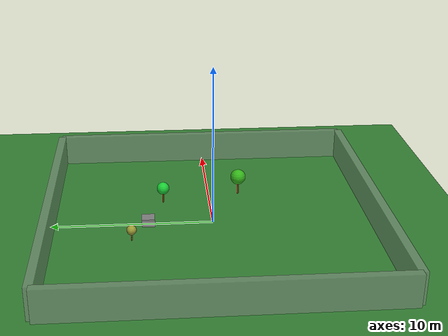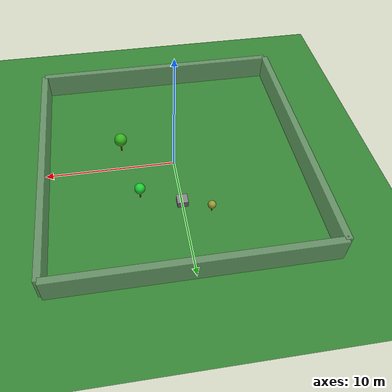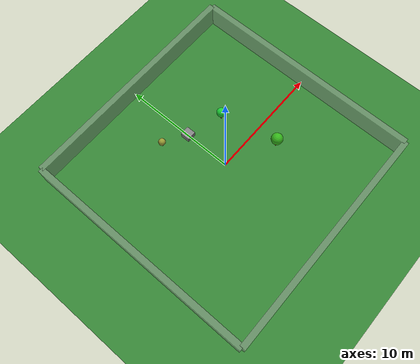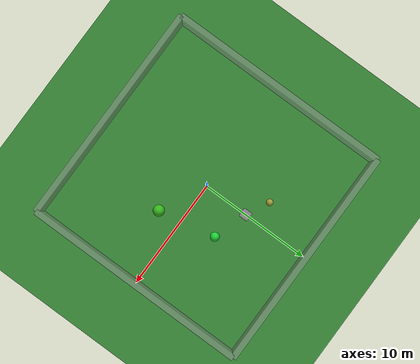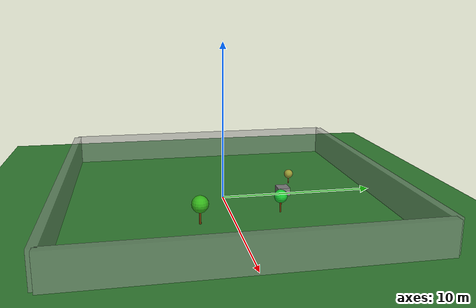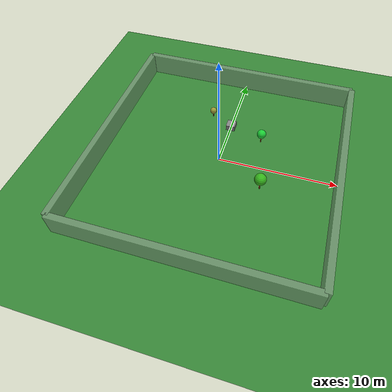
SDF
<?xml version="1.0" ?>
<sdf version="1.6">
  <world name="farm">

    <!-- Gunes -->
    <include>
      <uri>model://sun</uri>
    </include>

    <!-- Zemin (Çim Dokusu) -->
    <model name="ground_plane">
      <static>true</static>
      <link name="link">
        <collision name="collision">
          <geometry>
            <plane>
              <normal>0 0 1</normal>
              <size>100 100</size>
            </plane>
          </geometry>
          <surface>
            <friction>
              <ode>
                <mu>100</mu>
                <mu2>50</mu2>
              </ode>
            </friction>
          </surface>
        </collision>
        <visual name="visual">
          <cast_shadows>false</cast_shadows>
          <geometry>
            <plane>
              <normal>0 0 1</normal>
              <size>100 100</size>
            </plane>
          </geometry>
          <material>
            <ambient>0.2 0.5 0.2 1</ambient>
            <diffuse>0.2 0.5 0.2 1</diffuse>
            <specular>0.1 0.1 0.1 1</specular>
          </material>
        </visual>
      </link>
    </model>

    <!-- Sınır Duvarları (Sera Hissi) -->
    <!-- Kuzey Duvarı -->
    <model name="wall_north">
      <pose>0 10 1 0 0 0</pose>
      <static>true</static>
      <link name="link">
        <collision name="collision">
          <geometry><box><size>20 0.5 2</size></box></geometry>
        </collision>
        <visual name="visual">
          <geometry><box><size>20 0.5 2</size></box></geometry>
          <material><ambient>0.6 0.6 0.6 0.5</ambient></material> <!-- Yarı şeffaf cam gibi -->
        </visual>
      </link>
    </model>

    <!-- Güney Duvarı -->
    <model name="wall_south">
      <pose>0 -10 1 0 0 0</pose>
      <static>true</static>
      <link name="link">
        <collision name="collision">
          <geometry><box><size>20 0.5 2</size></box></geometry>
        </collision>
        <visual name="visual">
          <geometry><box><size>20 0.5 2</size></box></geometry>
          <material><ambient>0.6 0.6 0.6 0.5</ambient></material>
        </visual>
      </link>
    </model>

    <!-- Doğu Duvarı -->
    <model name="wall_east">
      <pose>10 0 1 0 0 1.5708</pose>
      <static>true</static>
      <link name="link">
        <collision name="collision">
          <geometry><box><size>20 0.5 2</size></box></geometry>
        </collision>
        <visual name="visual">
          <geometry><box><size>20 0.5 2</size></box></geometry>
          <material><ambient>0.6 0.6 0.6 0.5</ambient></material>
        </visual>
      </link>
    </model>

    <!-- Batı Duvarı -->
    <model name="wall_west">
      <pose>-10 0 1 0 0 1.5708</pose>
      <static>true</static>
      <link name="link">
        <collision name="collision">
          <geometry><box><size>20 0.5 2</size></box></geometry>
        </collision>
        <visual name="visual">
          <geometry><box><size>20 0.5 2</size></box></geometry>
          <material><ambient>0.6 0.6 0.6 0.5</ambient></material>
        </visual>
      </link>
    </model>

    <!-- Bitkiler (Detaylı Modeller) -->
    <!-- Bitki 1 -->
    <model name="plant_1">
      <pose>3 3 0 0 0 0</pose>
      <static>true</static>
      <link name="stem">
        <pose>0 0 0.4 0 0 0</pose>
        <collision name="collision"><geometry><cylinder><radius>0.05</radius><length>0.8</length></cylinder></geometry></collision>
        <visual name="visual">
          <geometry><cylinder><radius>0.05</radius><length>0.8</length></cylinder></geometry>
          <material><ambient>0.4 0.2 0.0 1</ambient></material> <!-- Kahverengi Gövde -->
        </visual>
      </link>
      <link name="leaves">
        <pose>0 0 1.0 0 0 0</pose>
        <collision name="collision"><geometry><sphere><radius>0.4</radius></sphere></geometry></collision>
        <visual name="visual">
          <geometry><sphere><radius>0.4</radius></sphere></geometry>
          <material><ambient>0.1 0.8 0.2 1</ambient></material> <!-- Yeşil Yapraklar -->
        </visual>
      </link>
    </model>

    <!-- Bitki 2 -->
    <model name="plant_2">
      <pose>4 -2 0 0 0 0</pose>
      <static>true</static>
      <link name="stem">
        <pose>0 0 0.5 0 0 0</pose>
        <collision name="collision"><geometry><cylinder><radius>0.06</radius><length>1.0</length></cylinder></geometry></collision>
        <visual name="visual">
          <geometry><cylinder><radius>0.06</radius><length>1.0</length></cylinder></geometry>
          <material><ambient>0.4 0.2 0.0 1</ambient></material>
        </visual>
      </link>
      <link name="leaves">
        <pose>0 0 1.2 0 0 0</pose>
        <collision name="collision"><geometry><sphere><radius>0.5</radius></sphere></geometry></collision>
        <visual name="visual">
          <geometry><sphere><radius>0.5</radius></sphere></geometry>
          <material><ambient>0.2 0.7 0.1 1</ambient></material>
        </visual>
      </link>
    </model>

    <!-- Bitki 3 (Kurumuş/Sulanması Gereken) -->
    <model name="plant_3">
      <pose>-2 5 0 0 0 0</pose>
      <static>true</static>
      <link name="stem">
        <pose>0 0 0.3 0 0 0</pose>
        <collision name="collision"><geometry><cylinder><radius>0.04</radius><length>0.6</length></cylinder></geometry></collision>
        <visual name="visual">
          <geometry><cylinder><radius>0.04</radius><length>0.6</length></cylinder></geometry>
          <material><ambient>0.5 0.3 0.1 1</ambient></material>
        </visual>
      </link>
      <link name="leaves">
        <pose>0 0 0.7 0 0 0</pose>
        <collision name="collision"><geometry><sphere><radius>0.3</radius></sphere></geometry></collision>
        <visual name="visual">
          <geometry><sphere><radius>0.3</radius></sphere></geometry>
          <material><ambient>0.6 0.6 0.2 1</ambient></material> <!-- Sarımsı/Kurumuş -->
        </visual>
      </link>
    </model>

    <!-- Engel (Kaya veya Kutu) -->
    <model name="rock_1">
      <pose>0 4 0.25 0 0 0</pose>
      <static>true</static>
      <link name="link">
        <collision name="collision"><geometry><box><size>0.8 0.8 0.5</size></box></geometry></collision>
        <visual name="visual">
          <geometry><box><size>0.8 0.8 0.5</size></box></geometry>
          <material><ambient>0.5 0.5 0.5 1</ambient></material>
        </visual>
      </link>
    </model>

  </world>
</sdf>
